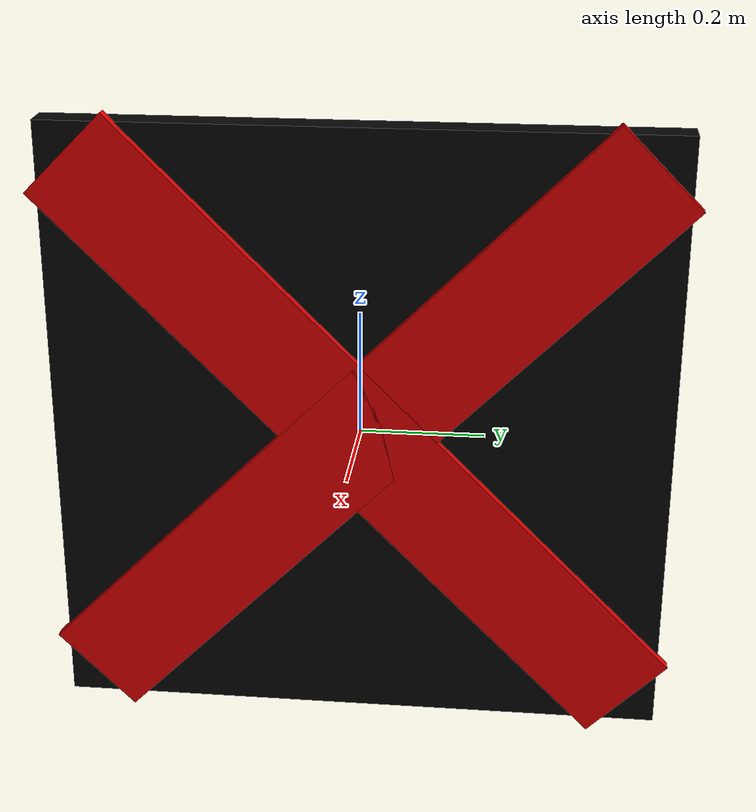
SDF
<?xml version="1.0"?>
<sdf version="1.7">
  <model name="lane_sign_x">
    <static>true</static>

    <link name="panel">
      <gravity>false</gravity>

      <!-- 1 x 1 m black background square, 5 cm thick. -->
      <visual name="background">
        <pose>0 0 0 0 0 0</pose>
        <geometry>
          <box>
            <size>0.05 1.0 1.0</size>
          </box>
        </geometry>
        <material>
          <ambient>0.02 0.02 0.02 1</ambient>
          <diffuse>0.02 0.02 0.02 1</diffuse>
          <specular>0.05 0.05 0.05 1</specular>
        </material>
      </visual>

      <!-- Red X, built from two crossed diagonal bars standing proud of the panel. -->
      <visual name="stroke_a">
        <pose>0.03 0 0 0.7854 0 0</pose>
        <geometry>
          <box>
            <size>0.02 0.18 1.28</size>
          </box>
        </geometry>
        <material>
          <ambient>0.1 0 0 1</ambient>
          <diffuse>0.9 0 0 1</diffuse>
          <specular>0 0 0 1</specular>
          <emissive>0.9 0 0 1</emissive>
        </material>
      </visual>

      <visual name="stroke_b">
        <pose>0.03 0 0 -0.7854 0 0</pose>
        <geometry>
          <box>
            <size>0.02 0.18 1.28</size>
          </box>
        </geometry>
        <material>
          <ambient>0.1 0 0 1</ambient>
          <diffuse>0.9 0 0 1</diffuse>
          <specular>0 0 0 1</specular>
          <emissive>0.9 0 0 1</emissive>
        </material>
      </visual>
    </link>
  </model>
</sdf>
